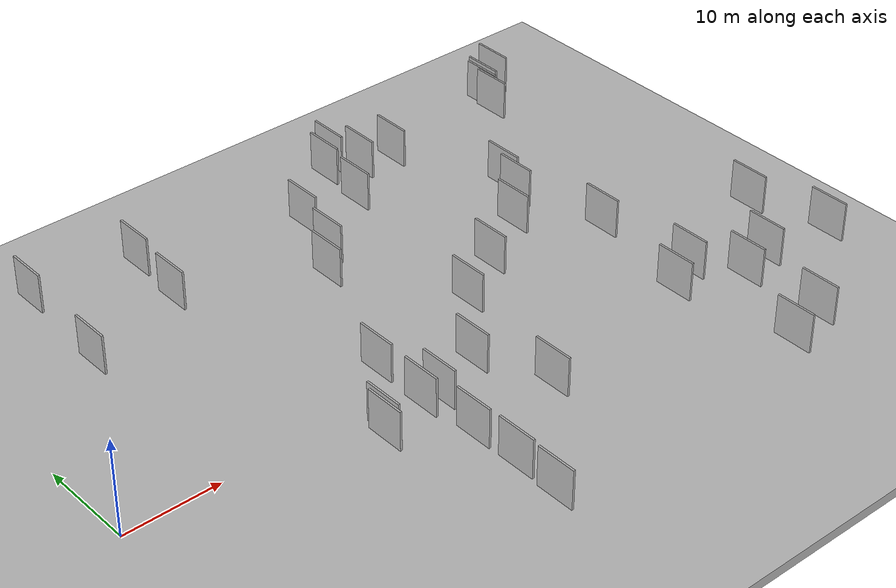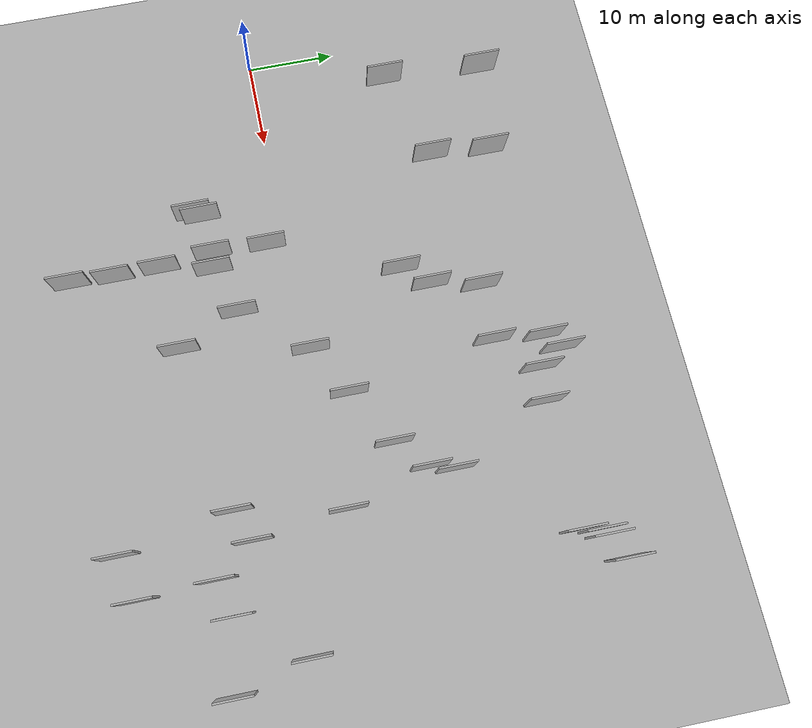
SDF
<?xml version="1.0" encoding="utf-8"?>

<sdf version="1.6">

   <world name="default">

      <gui fullscreen="0">

         <camera name="user_camera">

            <pose>-15 0 4.57585 0 0 0</pose>

            <view_controller>orbit</view_controller>

         </camera>

      </gui>

      <scene>

         <sky>

           <clouds>

             <speed>12</speed>

           </clouds>

         </sky>

         <ambient>0.4 0.4 0.4 1</ambient>

         <background>0.7 0.7 0.7 1</background>

         <shadows>1</shadows>

      </scene>

      <gravity>0 0 -9.8066</gravity>

      <magnetic_field>6e-06 2.3e-05 -4.2e-05</magnetic_field>

      <physics default="0" name="default_physics" type="ode">

         <ode>

            <solver>

               <type>quick</type>

               <iters>10</iters>

               <sor>1.0</sor>

               <use_dynamic_moi_rescaling>0</use_dynamic_moi_rescaling>

            </solver>

            <constraints>

               <cfm>0</cfm>

               <erp>0.2</erp>

               <contact_max_correcting_vel>100</contact_max_correcting_vel>

               <contact_surface_layer>0.001</contact_surface_layer>

            </constraints>

         </ode>

         <max_step_size>0.004</max_step_size>

         <real_time_factor>1</real_time_factor>

         <real_time_update_rate>250</real_time_update_rate>

      </physics>

      <light name="sun" type="directional">

         <cast_shadows>1</cast_shadows>

         <pose>0 0 10 0 0 0</pose>

         <diffuse>0.8 0.8 0.8 1</diffuse>

         <specular>0.2 0.2 0.2 1</specular>

         <attenuation>

            <range>1000</range>

            <constant>0.9</constant>

            <linear>0.01</linear>

            <quadratic>0.001</quadratic>

         </attenuation>

         <direction>-0.5 0.1 -0.9</direction>

      </light>

      <include>

         <name>ground_plane_1</name>

         <uri>model://HANNAS_ground_plane</uri>

         <pose>0 0 0  0 0 0</pose>

      </include>

      <include>

         <name>ground_plane_2</name>

         <uri>model://HANNAS_ground_plane</uri>

         <pose>100 0 0  0 0 0</pose>

      </include>

      <model name="HANNAS_wall_1">

         <static>1</static>

         <pose frame="">18.0395 17.9000 5.0 0.000000 0.000000 1.570796</pose>

         <link name="link">

            <pose frame="">0 0 2.00 0 0 0</pose>

            <collision name="collision">

               <geometry>

                  <box>

                     <size>4.00 0.2 4.00</size>

                  </box>

               </geometry>

               <max_contacts>10</max_contacts>

               <surface>

                  <contact>

                     <ode/>

                  </contact>

                  <bounce/>

                  <friction>

                     <torsional>

                        <ode/>

                     </torsional>

                     <ode/>

                  </friction>

               </surface>

            </collision>

            <visual name="visual">

               <cast_shadows>0</cast_shadows>

               <geometry>

                  <box>

                     <size>4.00 0.2 4.00</size>

                  </box>

               </geometry>

               <material>

                  <script>

                     <uri>model://HANNAS_wall/materials/scripts</uri>

                     <uri>model://HANNAS_wall/materials/textures</uri>

                     <name>vrc/HANNAS_wall</name>

                  </script>

               </material>

            </visual>

            <self_collide>0</self_collide>

            <enable_wind>0</enable_wind>

            <kinematic>0</kinematic>

         </link>

      </model>

      <model name="HANNAS_wall_2">

         <static>1</static>

         <pose frame="">32.0269 -6.1724 5.0 0.000000 0.000000 1.570796</pose>

         <link name="link">

            <pose frame="">0 0 2.00 0 0 0</pose>

            <collision name="collision">

               <geometry>

                  <box>

                     <size>4.00 0.2 4.00</size>

                  </box>

               </geometry>

               <max_contacts>10</max_contacts>

               <surface>

                  <contact>

                     <ode/>

                  </contact>

                  <bounce/>

                  <friction>

                     <torsional>

                        <ode/>

                     </torsional>

                     <ode/>

                  </friction>

               </surface>

            </collision>

            <visual name="visual">

               <cast_shadows>0</cast_shadows>

               <geometry>

                  <box>

                     <size>4.00 0.2 4.00</size>

                  </box>

               </geometry>

               <material>

                  <script>

                     <uri>model://HANNAS_wall/materials/scripts</uri>

                     <uri>model://HANNAS_wall/materials/textures</uri>

                     <name>vrc/HANNAS_wall</name>

                  </script>

               </material>

            </visual>

            <self_collide>0</self_collide>

            <enable_wind>0</enable_wind>

            <kinematic>0</kinematic>

         </link>

      </model>

      <model name="HANNAS_wall_3">

         <static>1</static>

         <pose frame="">34.9522 -12.9028 5.0 0.000000 0.000000 1.570796</pose>

         <link name="link">

            <pose frame="">0 0 2.00 0 0 0</pose>

            <collision name="collision">

               <geometry>

                  <box>

                     <size>4.00 0.2 4.00</size>

                  </box>

               </geometry>

               <max_contacts>10</max_contacts>

               <surface>

                  <contact>

                     <ode/>

                  </contact>

                  <bounce/>

                  <friction>

                     <torsional>

                        <ode/>

                     </torsional>

                     <ode/>

                  </friction>

               </surface>

            </collision>

            <visual name="visual">

               <cast_shadows>0</cast_shadows>

               <geometry>

                  <box>

                     <size>4.00 0.2 4.00</size>

                  </box>

               </geometry>

               <material>

                  <script>

                     <uri>model://HANNAS_wall/materials/scripts</uri>

                     <uri>model://HANNAS_wall/materials/textures</uri>

                     <name>vrc/HANNAS_wall</name>

                  </script>

               </material>

            </visual>

            <self_collide>0</self_collide>

            <enable_wind>0</enable_wind>

            <kinematic>0</kinematic>

         </link>

      </model>

      <model name="HANNAS_wall_4">

         <static>1</static>

         <pose frame="">42.4514 26.3036 5.0 0.000000 0.000000 1.570796</pose>

         <link name="link">

            <pose frame="">0 0 2.00 0 0 0</pose>

            <collision name="collision">

               <geometry>

                  <box>

                     <size>4.00 0.2 4.00</size>

                  </box>

               </geometry>

               <max_contacts>10</max_contacts>

               <surface>

                  <contact>

                     <ode/>

                  </contact>

                  <bounce/>

                  <friction>

                     <torsional>

                        <ode/>

                     </torsional>

                     <ode/>

                  </friction>

               </surface>

            </collision>

            <visual name="visual">

               <cast_shadows>0</cast_shadows>

               <geometry>

                  <box>

                     <size>4.00 0.2 4.00</size>

                  </box>

               </geometry>

               <material>

                  <script>

                     <uri>model://HANNAS_wall/materials/scripts</uri>

                     <uri>model://HANNAS_wall/materials/textures</uri>

                     <name>vrc/HANNAS_wall</name>

                  </script>

               </material>

            </visual>

            <self_collide>0</self_collide>

            <enable_wind>0</enable_wind>

            <kinematic>0</kinematic>

         </link>

      </model>

      <model name="HANNAS_wall_5">

         <static>1</static>

         <pose frame="">62.0060 25.9531 5.0 0.000000 0.000000 1.570796</pose>

         <link name="link">

            <pose frame="">0 0 2.00 0 0 0</pose>

            <collision name="collision">

               <geometry>

                  <box>

                     <size>4.00 0.2 4.00</size>

                  </box>

               </geometry>

               <max_contacts>10</max_contacts>

               <surface>

                  <contact>

                     <ode/>

                  </contact>

                  <bounce/>

                  <friction>

                     <torsional>

                        <ode/>

                     </torsional>

                     <ode/>

                  </friction>

               </surface>

            </collision>

            <visual name="visual">

               <cast_shadows>0</cast_shadows>

               <geometry>

                  <box>

                     <size>4.00 0.2 4.00</size>

                  </box>

               </geometry>

               <material>

                  <script>

                     <uri>model://HANNAS_wall/materials/scripts</uri>

                     <uri>model://HANNAS_wall/materials/textures</uri>

                     <name>vrc/HANNAS_wall</name>

                  </script>

               </material>

            </visual>

            <self_collide>0</self_collide>

            <enable_wind>0</enable_wind>

            <kinematic>0</kinematic>

         </link>

      </model>

      <model name="HANNAS_wall_6">

         <static>1</static>

         <pose frame="">37.5054 0.5543 5.0 0.000000 0.000000 1.570796</pose>

         <link name="link">

            <pose frame="">0 0 2.00 0 0 0</pose>

            <collision name="collision">

               <geometry>

                  <box>

                     <size>4.00 0.2 4.00</size>

                  </box>

               </geometry>

               <max_contacts>10</max_contacts>

               <surface>

                  <contact>

                     <ode/>

                  </contact>

                  <bounce/>

                  <friction>

                     <torsional>

                        <ode/>

                     </torsional>

                     <ode/>

                  </friction>

               </surface>

            </collision>

            <visual name="visual">

               <cast_shadows>0</cast_shadows>

               <geometry>

                  <box>

                     <size>4.00 0.2 4.00</size>

                  </box>

               </geometry>

               <material>

                  <script>

                     <uri>model://HANNAS_wall/materials/scripts</uri>

                     <uri>model://HANNAS_wall/materials/textures</uri>

                     <name>vrc/HANNAS_wall</name>

                  </script>

               </material>

            </visual>

            <self_collide>0</self_collide>

            <enable_wind>0</enable_wind>

            <kinematic>0</kinematic>

         </link>

      </model>

      <model name="HANNAS_wall_7">

         <static>1</static>

         <pose frame="">40.2252 19.5813 5.0 0.000000 0.000000 1.570796</pose>

         <link name="link">

            <pose frame="">0 0 2.00 0 0 0</pose>

            <collision name="collision">

               <geometry>

                  <box>

                     <size>4.00 0.2 4.00</size>

                  </box>

               </geometry>

               <max_contacts>10</max_contacts>

               <surface>

                  <contact>

                     <ode/>

                  </contact>

                  <bounce/>

                  <friction>

                     <torsional>

                        <ode/>

                     </torsional>

                     <ode/>

                  </friction>

               </surface>

            </collision>

            <visual name="visual">

               <cast_shadows>0</cast_shadows>

               <geometry>

                  <box>

                     <size>4.00 0.2 4.00</size>

                  </box>

               </geometry>

               <material>

                  <script>

                     <uri>model://HANNAS_wall/materials/scripts</uri>

                     <uri>model://HANNAS_wall/materials/textures</uri>

                     <name>vrc/HANNAS_wall</name>

                  </script>

               </material>

            </visual>

            <self_collide>0</self_collide>

            <enable_wind>0</enable_wind>

            <kinematic>0</kinematic>

         </link>

      </model>

      <model name="HANNAS_wall_8">

         <static>1</static>

         <pose frame="">59.2400 -20.8080 5.0 0.000000 0.000000 1.570796</pose>

         <link name="link">

            <pose frame="">0 0 2.00 0 0 0</pose>

            <collision name="collision">

               <geometry>

                  <box>

                     <size>4.00 0.2 4.00</size>

                  </box>

               </geometry>

               <max_contacts>10</max_contacts>

               <surface>

                  <contact>

                     <ode/>

                  </contact>

                  <bounce/>

                  <friction>

                     <torsional>

                        <ode/>

                     </torsional>

                     <ode/>

                  </friction>

               </surface>

            </collision>

            <visual name="visual">

               <cast_shadows>0</cast_shadows>

               <geometry>

                  <box>

                     <size>4.00 0.2 4.00</size>

                  </box>

               </geometry>

               <material>

                  <script>

                     <uri>model://HANNAS_wall/materials/scripts</uri>

                     <uri>model://HANNAS_wall/materials/textures</uri>

                     <name>vrc/HANNAS_wall</name>

                  </script>

               </material>

            </visual>

            <self_collide>0</self_collide>

            <enable_wind>0</enable_wind>

            <kinematic>0</kinematic>

         </link>

      </model>

      <model name="HANNAS_wall_9">

         <static>1</static>

         <pose frame="">19.9375 -9.1909 5.0 0.000000 0.000000 1.570796</pose>

         <link name="link">

            <pose frame="">0 0 2.00 0 0 0</pose>

            <collision name="collision">

               <geometry>

                  <box>

                     <size>4.00 0.2 4.00</size>

                  </box>

               </geometry>

               <max_contacts>10</max_contacts>

               <surface>

                  <contact>

                     <ode/>

                  </contact>

                  <bounce/>

                  <friction>

                     <torsional>

                        <ode/>

                     </torsional>

                     <ode/>

                  </friction>

               </surface>

            </collision>

            <visual name="visual">

               <cast_shadows>0</cast_shadows>

               <geometry>

                  <box>

                     <size>4.00 0.2 4.00</size>

                  </box>

               </geometry>

               <material>

                  <script>

                     <uri>model://HANNAS_wall/materials/scripts</uri>

                     <uri>model://HANNAS_wall/materials/textures</uri>

                     <name>vrc/HANNAS_wall</name>

                  </script>

               </material>

            </visual>

            <self_collide>0</self_collide>

            <enable_wind>0</enable_wind>

            <kinematic>0</kinematic>

         </link>

      </model>

      <model name="HANNAS_wall_10">

         <static>1</static>

         <pose frame="">51.9667 10.1452 5.0 0.000000 0.000000 1.570796</pose>

         <link name="link">

            <pose frame="">0 0 2.00 0 0 0</pose>

            <collision name="collision">

               <geometry>

                  <box>

                     <size>4.00 0.2 4.00</size>

                  </box>

               </geometry>

               <max_contacts>10</max_contacts>

               <surface>

                  <contact>

                     <ode/>

                  </contact>

                  <bounce/>

                  <friction>

                     <torsional>

                        <ode/>

                     </torsional>

                     <ode/>

                  </friction>

               </surface>

            </collision>

            <visual name="visual">

               <cast_shadows>0</cast_shadows>

               <geometry>

                  <box>

                     <size>4.00 0.2 4.00</size>

                  </box>

               </geometry>

               <material>

                  <script>

                     <uri>model://HANNAS_wall/materials/scripts</uri>

                     <uri>model://HANNAS_wall/materials/textures</uri>

                     <name>vrc/HANNAS_wall</name>

                  </script>

               </material>

            </visual>

            <self_collide>0</self_collide>

            <enable_wind>0</enable_wind>

            <kinematic>0</kinematic>

         </link>

      </model>

      <model name="HANNAS_wall_11">

         <static>1</static>

         <pose frame="">24.9171 -7.8168 5.0 0.000000 0.000000 1.570796</pose>

         <link name="link">

            <pose frame="">0 0 2.00 0 0 0</pose>

            <collision name="collision">

               <geometry>

                  <box>

                     <size>4.00 0.2 4.00</size>

                  </box>

               </geometry>

               <max_contacts>10</max_contacts>

               <surface>

                  <contact>

                     <ode/>

                  </contact>

                  <bounce/>

                  <friction>

                     <torsional>

                        <ode/>

                     </torsional>

                     <ode/>

                  </friction>

               </surface>

            </collision>

            <visual name="visual">

               <cast_shadows>0</cast_shadows>

               <geometry>

                  <box>

                     <size>4.00 0.2 4.00</size>

                  </box>

               </geometry>

               <material>

                  <script>

                     <uri>model://HANNAS_wall/materials/scripts</uri>

                     <uri>model://HANNAS_wall/materials/textures</uri>

                     <name>vrc/HANNAS_wall</name>

                  </script>

               </material>

            </visual>

            <self_collide>0</self_collide>

            <enable_wind>0</enable_wind>

            <kinematic>0</kinematic>

         </link>

      </model>

      <model name="HANNAS_wall_12">

         <static>1</static>

         <pose frame="">25.1056 -1.8848 5.0 0.000000 0.000000 1.570796</pose>

         <link name="link">

            <pose frame="">0 0 2.00 0 0 0</pose>

            <collision name="collision">

               <geometry>

                  <box>

                     <size>4.00 0.2 4.00</size>

                  </box>

               </geometry>

               <max_contacts>10</max_contacts>

               <surface>

                  <contact>

                     <ode/>

                  </contact>

                  <bounce/>

                  <friction>

                     <torsional>

                        <ode/>

                     </torsional>

                     <ode/>

                  </friction>

               </surface>

            </collision>

            <visual name="visual">

               <cast_shadows>0</cast_shadows>

               <geometry>

                  <box>

                     <size>4.00 0.2 4.00</size>

                  </box>

               </geometry>

               <material>

                  <script>

                     <uri>model://HANNAS_wall/materials/scripts</uri>

                     <uri>model://HANNAS_wall/materials/textures</uri>

                     <name>vrc/HANNAS_wall</name>

                  </script>

               </material>

            </visual>

            <self_collide>0</self_collide>

            <enable_wind>0</enable_wind>

            <kinematic>0</kinematic>

         </link>

      </model>

      <model name="HANNAS_wall_13">

         <static>1</static>

         <pose frame="">61.3620 25.4035 5.0 0.000000 0.000000 1.570796</pose>

         <link name="link">

            <pose frame="">0 0 2.00 0 0 0</pose>

            <collision name="collision">

               <geometry>

                  <box>

                     <size>4.00 0.2 4.00</size>

                  </box>

               </geometry>

               <max_contacts>10</max_contacts>

               <surface>

                  <contact>

                     <ode/>

                  </contact>

                  <bounce/>

                  <friction>

                     <torsional>

                        <ode/>

                     </torsional>

                     <ode/>

                  </friction>

               </surface>

            </collision>

            <visual name="visual">

               <cast_shadows>0</cast_shadows>

               <geometry>

                  <box>

                     <size>4.00 0.2 4.00</size>

                  </box>

               </geometry>

               <material>

                  <script>

                     <uri>model://HANNAS_wall/materials/scripts</uri>

                     <uri>model://HANNAS_wall/materials/textures</uri>

                     <name>vrc/HANNAS_wall</name>

                  </script>

               </material>

            </visual>

            <self_collide>0</self_collide>

            <enable_wind>0</enable_wind>

            <kinematic>0</kinematic>

         </link>

      </model>

      <model name="HANNAS_wall_14">

         <static>1</static>

         <pose frame="">40.8025 24.9017 5.0 0.000000 0.000000 1.570796</pose>

         <link name="link">

            <pose frame="">0 0 2.00 0 0 0</pose>

            <collision name="collision">

               <geometry>

                  <box>

                     <size>4.00 0.2 4.00</size>

                  </box>

               </geometry>

               <max_contacts>10</max_contacts>

               <surface>

                  <contact>

                     <ode/>

                  </contact>

                  <bounce/>

                  <friction>

                     <torsional>

                        <ode/>

                     </torsional>

                     <ode/>

                  </friction>

               </surface>

            </collision>

            <visual name="visual">

               <cast_shadows>0</cast_shadows>

               <geometry>

                  <box>

                     <size>4.00 0.2 4.00</size>

                  </box>

               </geometry>

               <material>

                  <script>

                     <uri>model://HANNAS_wall/materials/scripts</uri>

                     <uri>model://HANNAS_wall/materials/textures</uri>

                     <name>vrc/HANNAS_wall</name>

                  </script>

               </material>

            </visual>

            <self_collide>0</self_collide>

            <enable_wind>0</enable_wind>

            <kinematic>0</kinematic>

         </link>

      </model>

      <model name="HANNAS_wall_15">

         <static>1</static>

         <pose frame="">58.7868 -12.8273 5.0 0.000000 0.000000 1.570796</pose>

         <link name="link">

            <pose frame="">0 0 2.00 0 0 0</pose>

            <collision name="collision">

               <geometry>

                  <box>

                     <size>4.00 0.2 4.00</size>

                  </box>

               </geometry>

               <max_contacts>10</max_contacts>

               <surface>

                  <contact>

                     <ode/>

                  </contact>

                  <bounce/>

                  <friction>

                     <torsional>

                        <ode/>

                     </torsional>

                     <ode/>

                  </friction>

               </surface>

            </collision>

            <visual name="visual">

               <cast_shadows>0</cast_shadows>

               <geometry>

                  <box>

                     <size>4.00 0.2 4.00</size>

                  </box>

               </geometry>

               <material>

                  <script>

                     <uri>model://HANNAS_wall/materials/scripts</uri>

                     <uri>model://HANNAS_wall/materials/textures</uri>

                     <name>vrc/HANNAS_wall</name>

                  </script>

               </material>

            </visual>

            <self_collide>0</self_collide>

            <enable_wind>0</enable_wind>

            <kinematic>0</kinematic>

         </link>

      </model>

      <model name="HANNAS_wall_16">

         <static>1</static>

         <pose frame="">25.6088 -18.6212 5.0 0.000000 0.000000 1.570796</pose>

         <link name="link">

            <pose frame="">0 0 2.00 0 0 0</pose>

            <collision name="collision">

               <geometry>

                  <box>

                     <size>4.00 0.2 4.00</size>

                  </box>

               </geometry>

               <max_contacts>10</max_contacts>

               <surface>

                  <contact>

                     <ode/>

                  </contact>

                  <bounce/>

                  <friction>

                     <torsional>

                        <ode/>

                     </torsional>

                     <ode/>

                  </friction>

               </surface>

            </collision>

            <visual name="visual">

               <cast_shadows>0</cast_shadows>

               <geometry>

                  <box>

                     <size>4.00 0.2 4.00</size>

                  </box>

               </geometry>

               <material>

                  <script>

                     <uri>model://HANNAS_wall/materials/scripts</uri>

                     <uri>model://HANNAS_wall/materials/textures</uri>

                     <name>vrc/HANNAS_wall</name>

                  </script>

               </material>

            </visual>

            <self_collide>0</self_collide>

            <enable_wind>0</enable_wind>

            <kinematic>0</kinematic>

         </link>

      </model>

      <model name="HANNAS_wall_17">

         <static>1</static>

         <pose frame="">67.6859 -4.9693 5.0 0.000000 0.000000 1.570796</pose>

         <link name="link">

            <pose frame="">0 0 2.00 0 0 0</pose>

            <collision name="collision">

               <geometry>

                  <box>

                     <size>4.00 0.2 4.00</size>

                  </box>

               </geometry>

               <max_contacts>10</max_contacts>

               <surface>

                  <contact>

                     <ode/>

                  </contact>

                  <bounce/>

                  <friction>

                     <torsional>

                        <ode/>

                     </torsional>

                     <ode/>

                  </friction>

               </surface>

            </collision>

            <visual name="visual">

               <cast_shadows>0</cast_shadows>

               <geometry>

                  <box>

                     <size>4.00 0.2 4.00</size>

                  </box>

               </geometry>

               <material>

                  <script>

                     <uri>model://HANNAS_wall/materials/scripts</uri>

                     <uri>model://HANNAS_wall/materials/textures</uri>

                     <name>vrc/HANNAS_wall</name>

                  </script>

               </material>

            </visual>

            <self_collide>0</self_collide>

            <enable_wind>0</enable_wind>

            <kinematic>0</kinematic>

         </link>

      </model>

      <model name="HANNAS_wall_18">

         <static>1</static>

         <pose frame="">61.0178 23.5568 5.0 0.000000 0.000000 1.570796</pose>

         <link name="link">

            <pose frame="">0 0 2.00 0 0 0</pose>

            <collision name="collision">

               <geometry>

                  <box>

                     <size>4.00 0.2 4.00</size>

                  </box>

               </geometry>

               <max_contacts>10</max_contacts>

               <surface>

                  <contact>

                     <ode/>

                  </contact>

                  <bounce/>

                  <friction>

                     <torsional>

                        <ode/>

                     </torsional>

                     <ode/>

                  </friction>

               </surface>

            </collision>

            <visual name="visual">

               <cast_shadows>0</cast_shadows>

               <geometry>

                  <box>

                     <size>4.00 0.2 4.00</size>

                  </box>

               </geometry>

               <material>

                  <script>

                     <uri>model://HANNAS_wall/materials/scripts</uri>

                     <uri>model://HANNAS_wall/materials/textures</uri>

                     <name>vrc/HANNAS_wall</name>

                  </script>

               </material>

            </visual>

            <self_collide>0</self_collide>

            <enable_wind>0</enable_wind>

            <kinematic>0</kinematic>

         </link>

      </model>

      <model name="HANNAS_wall_19">

         <static>1</static>

         <pose frame="">55.7448 -8.6805 5.0 0.000000 0.000000 1.570796</pose>

         <link name="link">

            <pose frame="">0 0 2.00 0 0 0</pose>

            <collision name="collision">

               <geometry>

                  <box>

                     <size>4.00 0.2 4.00</size>

                  </box>

               </geometry>

               <max_contacts>10</max_contacts>

               <surface>

                  <contact>

                     <ode/>

                  </contact>

                  <bounce/>

                  <friction>

                     <torsional>

                        <ode/>

                     </torsional>

                     <ode/>

                  </friction>

               </surface>

            </collision>

            <visual name="visual">

               <cast_shadows>0</cast_shadows>

               <geometry>

                  <box>

                     <size>4.00 0.2 4.00</size>

                  </box>

               </geometry>

               <material>

                  <script>

                     <uri>model://HANNAS_wall/materials/scripts</uri>

                     <uri>model://HANNAS_wall/materials/textures</uri>

                     <name>vrc/HANNAS_wall</name>

                  </script>

               </material>

            </visual>

            <self_collide>0</self_collide>

            <enable_wind>0</enable_wind>

            <kinematic>0</kinematic>

         </link>

      </model>

      <model name="HANNAS_wall_20">

         <static>1</static>

         <pose frame="">7.6435 14.7521 5.0 0.000000 0.000000 1.570796</pose>

         <link name="link">

            <pose frame="">0 0 2.00 0 0 0</pose>

            <collision name="collision">

               <geometry>

                  <box>

                     <size>4.00 0.2 4.00</size>

                  </box>

               </geometry>

               <max_contacts>10</max_contacts>

               <surface>

                  <contact>

                     <ode/>

                  </contact>

                  <bounce/>

                  <friction>

                     <torsional>

                        <ode/>

                     </torsional>

                     <ode/>

                  </friction>

               </surface>

            </collision>

            <visual name="visual">

               <cast_shadows>0</cast_shadows>

               <geometry>

                  <box>

                     <size>4.00 0.2 4.00</size>

                  </box>

               </geometry>

               <material>

                  <script>

                     <uri>model://HANNAS_wall/materials/scripts</uri>

                     <uri>model://HANNAS_wall/materials/textures</uri>

                     <name>vrc/HANNAS_wall</name>

                  </script>

               </material>

            </visual>

            <self_collide>0</self_collide>

            <enable_wind>0</enable_wind>

            <kinematic>0</kinematic>

         </link>

      </model>

      <model name="HANNAS_wall_21">

         <static>1</static>

         <pose frame="">42.8633 3.6012 5.0 0.000000 0.000000 1.570796</pose>

         <link name="link">

            <pose frame="">0 0 2.00 0 0 0</pose>

            <collision name="collision">

               <geometry>

                  <box>

                     <size>4.00 0.2 4.00</size>

                  </box>

               </geometry>

               <max_contacts>10</max_contacts>

               <surface>

                  <contact>

                     <ode/>

                  </contact>

                  <bounce/>

                  <friction>

                     <torsional>

                        <ode/>

                     </torsional>

                     <ode/>

                  </friction>

               </surface>

            </collision>

            <visual name="visual">

               <cast_shadows>0</cast_shadows>

               <geometry>

                  <box>

                     <size>4.00 0.2 4.00</size>

                  </box>

               </geometry>

               <material>

                  <script>

                     <uri>model://HANNAS_wall/materials/scripts</uri>

                     <uri>model://HANNAS_wall/materials/textures</uri>

                     <name>vrc/HANNAS_wall</name>

                  </script>

               </material>

            </visual>

            <self_collide>0</self_collide>

            <enable_wind>0</enable_wind>

            <kinematic>0</kinematic>

         </link>

      </model>

      <model name="HANNAS_wall_22">

         <static>1</static>

         <pose frame="">48.8379 7.0568 5.0 0.000000 0.000000 1.570796</pose>

         <link name="link">

            <pose frame="">0 0 2.00 0 0 0</pose>

            <collision name="collision">

               <geometry>

                  <box>

                     <size>4.00 0.2 4.00</size>

                  </box>

               </geometry>

               <max_contacts>10</max_contacts>

               <surface>

                  <contact>

                     <ode/>

                  </contact>

                  <bounce/>

                  <friction>

                     <torsional>

                        <ode/>

                     </torsional>

                     <ode/>

                  </friction>

               </surface>

            </collision>

            <visual name="visual">

               <cast_shadows>0</cast_shadows>

               <geometry>

                  <box>

                     <size>4.00 0.2 4.00</size>

                  </box>

               </geometry>

               <material>

                  <script>

                     <uri>model://HANNAS_wall/materials/scripts</uri>

                     <uri>model://HANNAS_wall/materials/textures</uri>

                     <name>vrc/HANNAS_wall</name>

                  </script>

               </material>

            </visual>

            <self_collide>0</self_collide>

            <enable_wind>0</enable_wind>

            <kinematic>0</kinematic>

         </link>

      </model>

      <model name="HANNAS_wall_23">

         <static>1</static>

         <pose frame="">52.6699 12.6405 5.0 0.000000 0.000000 1.570796</pose>

         <link name="link">

            <pose frame="">0 0 2.00 0 0 0</pose>

            <collision name="collision">

               <geometry>

                  <box>

                     <size>4.00 0.2 4.00</size>

                  </box>

               </geometry>

               <max_contacts>10</max_contacts>

               <surface>

                  <contact>

                     <ode/>

                  </contact>

                  <bounce/>

                  <friction>

                     <torsional>

                        <ode/>

                     </torsional>

                     <ode/>

                  </friction>

               </surface>

            </collision>

            <visual name="visual">

               <cast_shadows>0</cast_shadows>

               <geometry>

                  <box>

                     <size>4.00 0.2 4.00</size>

                  </box>

               </geometry>

               <material>

                  <script>

                     <uri>model://HANNAS_wall/materials/scripts</uri>

                     <uri>model://HANNAS_wall/materials/textures</uri>

                     <name>vrc/HANNAS_wall</name>

                  </script>

               </material>

            </visual>

            <self_collide>0</self_collide>

            <enable_wind>0</enable_wind>

            <kinematic>0</kinematic>

         </link>

      </model>

      <model name="HANNAS_wall_24">

         <static>1</static>

         <pose frame="">25.5390 -13.6128 5.0 0.000000 0.000000 1.570796</pose>

         <link name="link">

            <pose frame="">0 0 2.00 0 0 0</pose>

            <collision name="collision">

               <geometry>

                  <box>

                     <size>4.00 0.2 4.00</size>

                  </box>

               </geometry>

               <max_contacts>10</max_contacts>

               <surface>

                  <contact>

                     <ode/>

                  </contact>

                  <bounce/>

                  <friction>

                     <torsional>

                        <ode/>

                     </torsional>

                     <ode/>

                  </friction>

               </surface>

            </collision>

            <visual name="visual">

               <cast_shadows>0</cast_shadows>

               <geometry>

                  <box>

                     <size>4.00 0.2 4.00</size>

                  </box>

               </geometry>

               <material>

                  <script>

                     <uri>model://HANNAS_wall/materials/scripts</uri>

                     <uri>model://HANNAS_wall/materials/textures</uri>

                     <name>vrc/HANNAS_wall</name>

                  </script>

               </material>

            </visual>

            <self_collide>0</self_collide>

            <enable_wind>0</enable_wind>

            <kinematic>0</kinematic>

         </link>

      </model>

      <model name="HANNAS_wall_25">

         <static>1</static>

         <pose frame="">18.6045 24.2151 5.0 0.000000 0.000000 1.570796</pose>

         <link name="link">

            <pose frame="">0 0 2.00 0 0 0</pose>

            <collision name="collision">

               <geometry>

                  <box>

                     <size>4.00 0.2 4.00</size>

                  </box>

               </geometry>

               <max_contacts>10</max_contacts>

               <surface>

                  <contact>

                     <ode/>

                  </contact>

                  <bounce/>

                  <friction>

                     <torsional>

                        <ode/>

                     </torsional>

                     <ode/>

                  </friction>

               </surface>

            </collision>

            <visual name="visual">

               <cast_shadows>0</cast_shadows>

               <geometry>

                  <box>

                     <size>4.00 0.2 4.00</size>

                  </box>

               </geometry>

               <material>

                  <script>

                     <uri>model://HANNAS_wall/materials/scripts</uri>

                     <uri>model://HANNAS_wall/materials/textures</uri>

                     <name>vrc/HANNAS_wall</name>

                  </script>

               </material>

            </visual>

            <self_collide>0</self_collide>

            <enable_wind>0</enable_wind>

            <kinematic>0</kinematic>

         </link>

      </model>

      <model name="HANNAS_wall_26">

         <static>1</static>

         <pose frame="">32.9033 14.4818 5.0 0.000000 0.000000 1.570796</pose>

         <link name="link">

            <pose frame="">0 0 2.00 0 0 0</pose>

            <collision name="collision">

               <geometry>

                  <box>

                     <size>4.00 0.2 4.00</size>

                  </box>

               </geometry>

               <max_contacts>10</max_contacts>

               <surface>

                  <contact>

                     <ode/>

                  </contact>

                  <bounce/>

                  <friction>

                     <torsional>

                        <ode/>

                     </torsional>

                     <ode/>

                  </friction>

               </surface>

            </collision>

            <visual name="visual">

               <cast_shadows>0</cast_shadows>

               <geometry>

                  <box>

                     <size>4.00 0.2 4.00</size>

                  </box>

               </geometry>

               <material>

                  <script>

                     <uri>model://HANNAS_wall/materials/scripts</uri>

                     <uri>model://HANNAS_wall/materials/textures</uri>

                     <name>vrc/HANNAS_wall</name>

                  </script>

               </material>

            </visual>

            <self_collide>0</self_collide>

            <enable_wind>0</enable_wind>

            <kinematic>0</kinematic>

         </link>

      </model>

      <model name="HANNAS_wall_27">

         <static>1</static>

         <pose frame="">30.5633 11.6627 5.0 0.000000 0.000000 1.570796</pose>

         <link name="link">

            <pose frame="">0 0 2.00 0 0 0</pose>

            <collision name="collision">

               <geometry>

                  <box>

                     <size>4.00 0.2 4.00</size>

                  </box>

               </geometry>

               <max_contacts>10</max_contacts>

               <surface>

                  <contact>

                     <ode/>

                  </contact>

                  <bounce/>

                  <friction>

                     <torsional>

                        <ode/>

                     </torsional>

                     <ode/>

                  </friction>

               </surface>

            </collision>

            <visual name="visual">

               <cast_shadows>0</cast_shadows>

               <geometry>

                  <box>

                     <size>4.00 0.2 4.00</size>

                  </box>

               </geometry>

               <material>

                  <script>

                     <uri>model://HANNAS_wall/materials/scripts</uri>

                     <uri>model://HANNAS_wall/materials/textures</uri>

                     <name>vrc/HANNAS_wall</name>

                  </script>

               </material>

            </visual>

            <self_collide>0</self_collide>

            <enable_wind>0</enable_wind>

            <kinematic>0</kinematic>

         </link>

      </model>

      <model name="HANNAS_wall_28">

         <static>1</static>

         <pose frame="">47.7020 23.2562 5.0 0.000000 0.000000 1.570796</pose>

         <link name="link">

            <pose frame="">0 0 2.00 0 0 0</pose>

            <collision name="collision">

               <geometry>

                  <box>

                     <size>4.00 0.2 4.00</size>

                  </box>

               </geometry>

               <max_contacts>10</max_contacts>

               <surface>

                  <contact>

                     <ode/>

                  </contact>

                  <bounce/>

                  <friction>

                     <torsional>

                        <ode/>

                     </torsional>

                     <ode/>

                  </friction>

               </surface>

            </collision>

            <visual name="visual">

               <cast_shadows>0</cast_shadows>

               <geometry>

                  <box>

                     <size>4.00 0.2 4.00</size>

                  </box>

               </geometry>

               <material>

                  <script>

                     <uri>model://HANNAS_wall/materials/scripts</uri>

                     <uri>model://HANNAS_wall/materials/textures</uri>

                     <name>vrc/HANNAS_wall</name>

                  </script>

               </material>

            </visual>

            <self_collide>0</self_collide>

            <enable_wind>0</enable_wind>

            <kinematic>0</kinematic>

         </link>

      </model>

      <model name="HANNAS_wall_29">

         <static>1</static>

         <pose frame="">52.4315 -10.1542 5.0 0.000000 0.000000 1.570796</pose>

         <link name="link">

            <pose frame="">0 0 2.00 0 0 0</pose>

            <collision name="collision">

               <geometry>

                  <box>

                     <size>4.00 0.2 4.00</size>

                  </box>

               </geometry>

               <max_contacts>10</max_contacts>

               <surface>

                  <contact>

                     <ode/>

                  </contact>

                  <bounce/>

                  <friction>

                     <torsional>

                        <ode/>

                     </torsional>

                     <ode/>

                  </friction>

               </surface>

            </collision>

            <visual name="visual">

               <cast_shadows>0</cast_shadows>

               <geometry>

                  <box>

                     <size>4.00 0.2 4.00</size>

                  </box>

               </geometry>

               <material>

                  <script>

                     <uri>model://HANNAS_wall/materials/scripts</uri>

                     <uri>model://HANNAS_wall/materials/textures</uri>

                     <name>vrc/HANNAS_wall</name>

                  </script>

               </material>

            </visual>

            <self_collide>0</self_collide>

            <enable_wind>0</enable_wind>

            <kinematic>0</kinematic>

         </link>

      </model>

      <model name="HANNAS_wall_30">

         <static>1</static>

         <pose frame="">62.5050 -11.7549 5.0 0.000000 0.000000 1.570796</pose>

         <link name="link">

            <pose frame="">0 0 2.00 0 0 0</pose>

            <collision name="collision">

               <geometry>

                  <box>

                     <size>4.00 0.2 4.00</size>

                  </box>

               </geometry>

               <max_contacts>10</max_contacts>

               <surface>

                  <contact>

                     <ode/>

                  </contact>

                  <bounce/>

                  <friction>

                     <torsional>

                        <ode/>

                     </torsional>

                     <ode/>

                  </friction>

               </surface>

            </collision>

            <visual name="visual">

               <cast_shadows>0</cast_shadows>

               <geometry>

                  <box>

                     <size>4.00 0.2 4.00</size>

                  </box>

               </geometry>

               <material>

                  <script>

                     <uri>model://HANNAS_wall/materials/scripts</uri>

                     <uri>model://HANNAS_wall/materials/textures</uri>

                     <name>vrc/HANNAS_wall</name>

                  </script>

               </material>

            </visual>

            <self_collide>0</self_collide>

            <enable_wind>0</enable_wind>

            <kinematic>0</kinematic>

         </link>

      </model>

      <model name="HANNAS_wall_31">

         <static>1</static>

         <pose frame="">64.5607 27.2762 5.0 0.000000 0.000000 1.570796</pose>

         <link name="link">

            <pose frame="">0 0 2.00 0 0 0</pose>

            <collision name="collision">

               <geometry>

                  <box>

                     <size>4.00 0.2 4.00</size>

                  </box>

               </geometry>

               <max_contacts>10</max_contacts>

               <surface>

                  <contact>

                     <ode/>

                  </contact>

                  <bounce/>

                  <friction>

                     <torsional>

                        <ode/>

                     </torsional>

                     <ode/>

                  </friction>

               </surface>

            </collision>

            <visual name="visual">

               <cast_shadows>0</cast_shadows>

               <geometry>

                  <box>

                     <size>4.00 0.2 4.00</size>

                  </box>

               </geometry>

               <material>

                  <script>

                     <uri>model://HANNAS_wall/materials/scripts</uri>

                     <uri>model://HANNAS_wall/materials/textures</uri>

                     <name>vrc/HANNAS_wall</name>

                  </script>

               </material>

            </visual>

            <self_collide>0</self_collide>

            <enable_wind>0</enable_wind>

            <kinematic>0</kinematic>

         </link>

      </model>

      <model name="HANNAS_wall_32">

         <static>1</static>

         <pose frame="">34.0920 19.6879 5.0 0.000000 0.000000 1.570796</pose>

         <link name="link">

            <pose frame="">0 0 2.00 0 0 0</pose>

            <collision name="collision">

               <geometry>

                  <box>

                     <size>4.00 0.2 4.00</size>

                  </box>

               </geometry>

               <max_contacts>10</max_contacts>

               <surface>

                  <contact>

                     <ode/>

                  </contact>

                  <bounce/>

                  <friction>

                     <torsional>

                        <ode/>

                     </torsional>

                     <ode/>

                  </friction>

               </surface>

            </collision>

            <visual name="visual">

               <cast_shadows>0</cast_shadows>

               <geometry>

                  <box>

                     <size>4.00 0.2 4.00</size>

                  </box>

               </geometry>

               <material>

                  <script>

                     <uri>model://HANNAS_wall/materials/scripts</uri>

                     <uri>model://HANNAS_wall/materials/textures</uri>

                     <name>vrc/HANNAS_wall</name>

                  </script>

               </material>

            </visual>

            <self_collide>0</self_collide>

            <enable_wind>0</enable_wind>

            <kinematic>0</kinematic>

         </link>

      </model>

      <model name="HANNAS_wall_33">

         <static>1</static>

         <pose frame="">25.4064 -23.3367 5.0 0.000000 0.000000 1.570796</pose>

         <link name="link">

            <pose frame="">0 0 2.00 0 0 0</pose>

            <collision name="collision">

               <geometry>

                  <box>

                     <size>4.00 0.2 4.00</size>

                  </box>

               </geometry>

               <max_contacts>10</max_contacts>

               <surface>

                  <contact>

                     <ode/>

                  </contact>

                  <bounce/>

                  <friction>

                     <torsional>

                        <ode/>

                     </torsional>

                     <ode/>

                  </friction>

               </surface>

            </collision>

            <visual name="visual">

               <cast_shadows>0</cast_shadows>

               <geometry>

                  <box>

                     <size>4.00 0.2 4.00</size>

                  </box>

               </geometry>

               <material>

                  <script>

                     <uri>model://HANNAS_wall/materials/scripts</uri>

                     <uri>model://HANNAS_wall/materials/textures</uri>

                     <name>vrc/HANNAS_wall</name>

                  </script>

               </material>

            </visual>

            <self_collide>0</self_collide>

            <enable_wind>0</enable_wind>

            <kinematic>0</kinematic>

         </link>

      </model>

      <model name="HANNAS_wall_34">

         <static>1</static>

         <pose frame="">69.7770 -12.8104 5.0 0.000000 0.000000 1.570796</pose>

         <link name="link">

            <pose frame="">0 0 2.00 0 0 0</pose>

            <collision name="collision">

               <geometry>

                  <box>

                     <size>4.00 0.2 4.00</size>

                  </box>

               </geometry>

               <max_contacts>10</max_contacts>

               <surface>

                  <contact>

                     <ode/>

                  </contact>

                  <bounce/>

                  <friction>

                     <torsional>

                        <ode/>

                     </torsional>

                     <ode/>

                  </friction>

               </surface>

            </collision>

            <visual name="visual">

               <cast_shadows>0</cast_shadows>

               <geometry>

                  <box>

                     <size>4.00 0.2 4.00</size>

                  </box>

               </geometry>

               <material>

                  <script>

                     <uri>model://HANNAS_wall/materials/scripts</uri>

                     <uri>model://HANNAS_wall/materials/textures</uri>

                     <name>vrc/HANNAS_wall</name>

                  </script>

               </material>

            </visual>

            <self_collide>0</self_collide>

            <enable_wind>0</enable_wind>

            <kinematic>0</kinematic>

         </link>

      </model>

      <model name="HANNAS_wall_35">

         <static>1</static>

         <pose frame="">44.0962 23.6590 5.0 0.000000 0.000000 1.570796</pose>

         <link name="link">

            <pose frame="">0 0 2.00 0 0 0</pose>

            <collision name="collision">

               <geometry>

                  <box>

                     <size>4.00 0.2 4.00</size>

                  </box>

               </geometry>

               <max_contacts>10</max_contacts>

               <surface>

                  <contact>

                     <ode/>

                  </contact>

                  <bounce/>

                  <friction>

                     <torsional>

                        <ode/>

                     </torsional>

                     <ode/>

                  </friction>

               </surface>

            </collision>

            <visual name="visual">

               <cast_shadows>0</cast_shadows>

               <geometry>

                  <box>

                     <size>4.00 0.2 4.00</size>

                  </box>

               </geometry>

               <material>

                  <script>

                     <uri>model://HANNAS_wall/materials/scripts</uri>

                     <uri>model://HANNAS_wall/materials/textures</uri>

                     <name>vrc/HANNAS_wall</name>

                  </script>

               </material>

            </visual>

            <self_collide>0</self_collide>

            <enable_wind>0</enable_wind>

            <kinematic>0</kinematic>

         </link>

      </model>

      <model name="HANNAS_wall_36">

         <static>1</static>

         <pose frame="">20.4618 -8.3566 5.0 0.000000 0.000000 1.570796</pose>

         <link name="link">

            <pose frame="">0 0 2.00 0 0 0</pose>

            <collision name="collision">

               <geometry>

                  <box>

                     <size>4.00 0.2 4.00</size>

                  </box>

               </geometry>

               <max_contacts>10</max_contacts>

               <surface>

                  <contact>

                     <ode/>

                  </contact>

                  <bounce/>

                  <friction>

                     <torsional>

                        <ode/>

                     </torsional>

                     <ode/>

                  </friction>

               </surface>

            </collision>

            <visual name="visual">

               <cast_shadows>0</cast_shadows>

               <geometry>

                  <box>

                     <size>4.00 0.2 4.00</size>

                  </box>

               </geometry>

               <material>

                  <script>

                     <uri>model://HANNAS_wall/materials/scripts</uri>

                     <uri>model://HANNAS_wall/materials/textures</uri>

                     <name>vrc/HANNAS_wall</name>

                  </script>

               </material>

            </visual>

            <self_collide>0</self_collide>

            <enable_wind>0</enable_wind>

            <kinematic>0</kinematic>

         </link>

      </model>

      <model name="HANNAS_wall_37">

         <static>1</static>

         <pose frame="">54.5257 1.1861 5.0 0.000000 0.000000 1.570796</pose>

         <link name="link">

            <pose frame="">0 0 2.00 0 0 0</pose>

            <collision name="collision">

               <geometry>

                  <box>

                     <size>4.00 0.2 4.00</size>

                  </box>

               </geometry>

               <max_contacts>10</max_contacts>

               <surface>

                  <contact>

                     <ode/>

                  </contact>

                  <bounce/>

                  <friction>

                     <torsional>

                        <ode/>

                     </torsional>

                     <ode/>

                  </friction>

               </surface>

            </collision>

            <visual name="visual">

               <cast_shadows>0</cast_shadows>

               <geometry>

                  <box>

                     <size>4.00 0.2 4.00</size>

                  </box>

               </geometry>

               <material>

                  <script>

                     <uri>model://HANNAS_wall/materials/scripts</uri>

                     <uri>model://HANNAS_wall/materials/textures</uri>

                     <name>vrc/HANNAS_wall</name>

                  </script>

               </material>

            </visual>

            <self_collide>0</self_collide>

            <enable_wind>0</enable_wind>

            <kinematic>0</kinematic>

         </link>

      </model>

      <model name="HANNAS_wall_38">

         <static>1</static>

         <pose frame="">26.7400 -8.0293 5.0 0.000000 0.000000 1.570796</pose>

         <link name="link">

            <pose frame="">0 0 2.00 0 0 0</pose>

            <collision name="collision">

               <geometry>

                  <box>

                     <size>4.00 0.2 4.00</size>

                  </box>

               </geometry>

               <max_contacts>10</max_contacts>

               <surface>

                  <contact>

                     <ode/>

                  </contact>

                  <bounce/>

                  <friction>

                     <torsional>

                        <ode/>

                     </torsional>

                     <ode/>

                  </friction>

               </surface>

            </collision>

            <visual name="visual">

               <cast_shadows>0</cast_shadows>

               <geometry>

                  <box>

                     <size>4.00 0.2 4.00</size>

                  </box>

               </geometry>

               <material>

                  <script>

                     <uri>model://HANNAS_wall/materials/scripts</uri>

                     <uri>model://HANNAS_wall/materials/textures</uri>

                     <name>vrc/HANNAS_wall</name>

                  </script>

               </material>

            </visual>

            <self_collide>0</self_collide>

            <enable_wind>0</enable_wind>

            <kinematic>0</kinematic>

         </link>

      </model>

      <model name="HANNAS_wall_39">

         <static>1</static>

         <pose frame="">54.6405 -22.0929 5.0 0.000000 0.000000 1.570796</pose>

         <link name="link">

            <pose frame="">0 0 2.00 0 0 0</pose>

            <collision name="collision">

               <geometry>

                  <box>

                     <size>4.00 0.2 4.00</size>

                  </box>

               </geometry>

               <max_contacts>10</max_contacts>

               <surface>

                  <contact>

                     <ode/>

                  </contact>

                  <bounce/>

                  <friction>

                     <torsional>

                        <ode/>

                     </torsional>

                     <ode/>

                  </friction>

               </surface>

            </collision>

            <visual name="visual">

               <cast_shadows>0</cast_shadows>

               <geometry>

                  <box>

                     <size>4.00 0.2 4.00</size>

                  </box>

               </geometry>

               <material>

                  <script>

                     <uri>model://HANNAS_wall/materials/scripts</uri>

                     <uri>model://HANNAS_wall/materials/textures</uri>

                     <name>vrc/HANNAS_wall</name>

                  </script>

               </material>

            </visual>

            <self_collide>0</self_collide>

            <enable_wind>0</enable_wind>

            <kinematic>0</kinematic>

         </link>

      </model>

      <model name="HANNAS_wall_40">

         <static>1</static>

         <pose frame="">8.3472 25.6633 5.0 0.000000 0.000000 1.570796</pose>

         <link name="link">

            <pose frame="">0 0 2.00 0 0 0</pose>

            <collision name="collision">

               <geometry>

                  <box>

                     <size>4.00 0.2 4.00</size>

                  </box>

               </geometry>

               <max_contacts>10</max_contacts>

               <surface>

                  <contact>

                     <ode/>

                  </contact>

                  <bounce/>

                  <friction>

                     <torsional>

                        <ode/>

                     </torsional>

                     <ode/>

                  </friction>

               </surface>

            </collision>

            <visual name="visual">

               <cast_shadows>0</cast_shadows>

               <geometry>

                  <box>

                     <size>4.00 0.2 4.00</size>

                  </box>

               </geometry>

               <material>

                  <script>

                     <uri>model://HANNAS_wall/materials/scripts</uri>

                     <uri>model://HANNAS_wall/materials/textures</uri>

                     <name>vrc/HANNAS_wall</name>

                  </script>

               </material>

            </visual>

            <self_collide>0</self_collide>

            <enable_wind>0</enable_wind>

            <kinematic>0</kinematic>

         </link>

      </model>

   </world>

</sdf>
